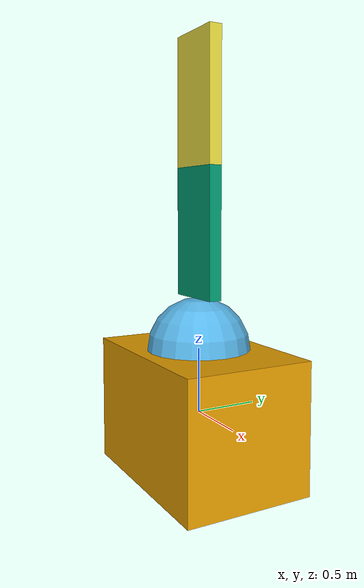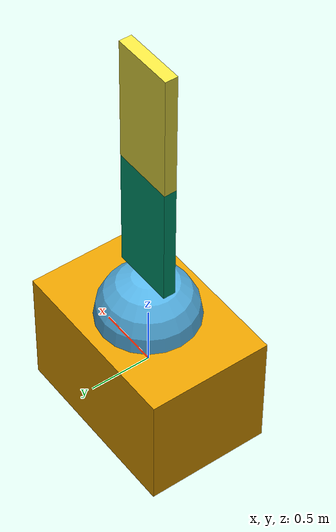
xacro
<?xml version="1.0" ?>

<robot name="mrm" xmlns:xacro="http://www.ros.org/wiki/xacro">
    <link name="base_link">
        <visual>
            <origin rpy="0 0 0" xyz="0 0 0"/>
            <geometry>
                <box size="1.5 1 1"/>
            </geometry>
        </visual>
    </link>

    <joint name="base_link__link01" type="revolute">
        <axis xyz="0 0 1"/>
        <limit effort="1000.0" lower="-3.14" upper="3.14" velocity="0.5"/>
        <origin rpy="0 0 0" xyz="0 0 0.5"/>
        <parent link="base_link"/>
        <child link="link_01"/>
    </joint>

    <link name="link_01">
        <visual>
            <origin rpy="0 0 0" xyz="0 0 0"/>
            <geometry>
                <sphere radius="0.4"/>
            </geometry>
        </visual>
    </link>

    <joint name="link_01__link02" type="revolute">
        <axis xyz="0 1 0"/>
        <limit effort="1000.0" lower="-1.57" upper="1.57" velocity="0.5"/>
        <origin rpy="0 0 0" xyz="0 0 0.0"/>
        <parent link="link_01"/>
        <child link="link_02"/>
    </joint>

    <link name="link_02">
        <visual>
            <origin rpy="0 0 0" xyz="0 0 0.9"/>
            <geometry>
                <box size="0.5 0.1 1"/>
            </geometry>
        </visual>
    </link>

    <joint name="link_02__link03" type="revolute">
        <axis xyz="0 1 0"/>
        <limit effort="1000.0" lower="-1.57" upper="1.57" velocity="0.5"/>
        <origin rpy="0 0 0" xyz="0 0 1.4"/>
        <parent link="link_02"/>
        <child link="link_03"/>
    </joint>

    <link name="link_03">
        <visual>
            <origin rpy="0 0 0" xyz="0 0 0.5"/>
            <geometry>
                <box size="0.5 0.1 1"/>
            </geometry>
        </visual>
    </link>
</robot>
